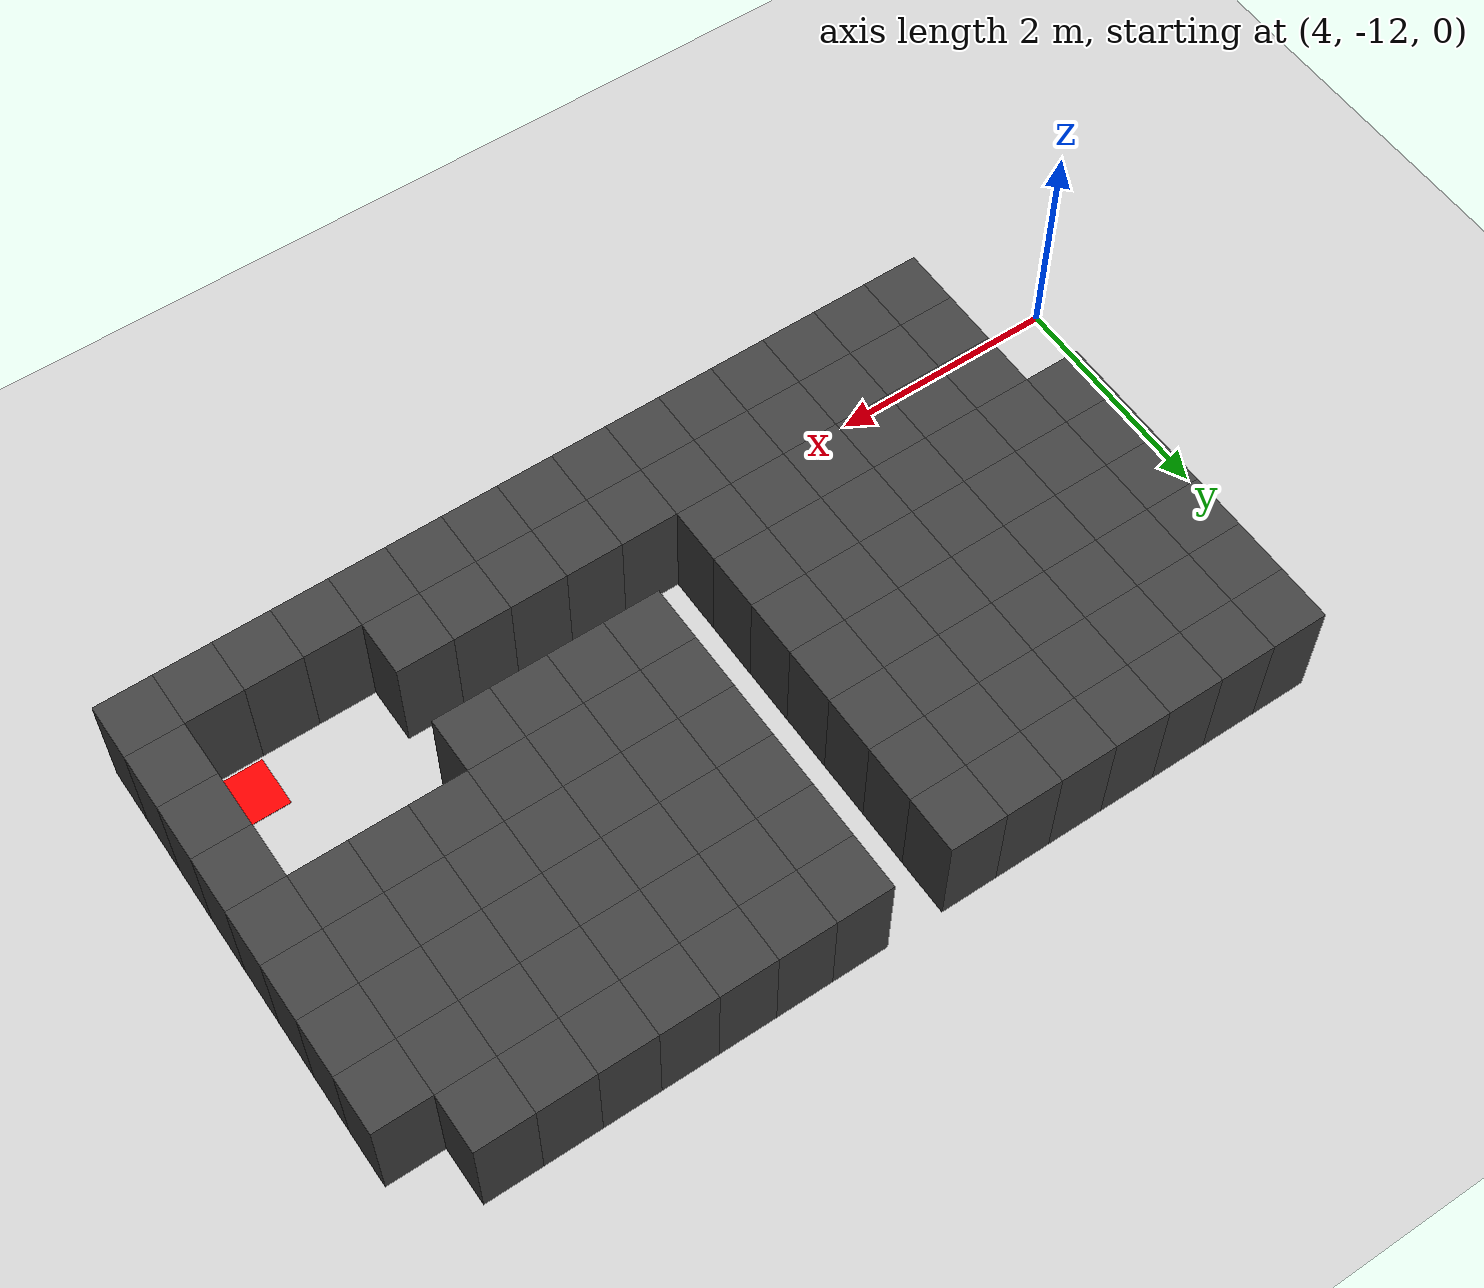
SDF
<sdf version="1.7">
 <world name="map_14706">
  <model name="ground_plane">
   <static>true</static>
   <link name="link">
    <collision name="collision">
     <geometry><plane><normal>0 0 1</normal><size>200 200</size></plane></geometry>
    </collision>
    <visual name="visual">
     <geometry><plane><normal>0 0 1</normal><size>200 200</size></plane></geometry>
     <material><ambient>0.8 0.8 0.8 1</ambient><diffuse>0.8 0.8 0.8 1</diffuse></material>
    </visual>
   </link>
  </model>
  <model name="maze_environment">
   <static>true</static>
   <link name="wall_1494">
    <pose>4.750 -8.250 0.500 0 0 0</pose>
    <collision name="col"><geometry><box><size>0.5 0.5 1.0</size></box></geometry></collision>
    <visual name="vis">
     <geometry><box><size>0.5 0.5 1.0</size></box></geometry>
     <material><ambient>0.15 0.15 0.15 1</ambient><diffuse>0.25 0.25 0.25 1</diffuse></material>
    </visual>
   </link>
   <link name="wall_1495">
    <pose>5.250 -8.250 0.500 0 0 0</pose>
    <collision name="col"><geometry><box><size>0.5 0.5 1.0</size></box></geometry></collision>
    <visual name="vis">
     <geometry><box><size>0.5 0.5 1.0</size></box></geometry>
     <material><ambient>0.15 0.15 0.15 1</ambient><diffuse>0.25 0.25 0.25 1</diffuse></material>
    </visual>
   </link>
   <link name="wall_1496">
    <pose>5.750 -8.250 0.500 0 0 0</pose>
    <collision name="col"><geometry><box><size>0.5 0.5 1.0</size></box></geometry></collision>
    <visual name="vis">
     <geometry><box><size>0.5 0.5 1.0</size></box></geometry>
     <material><ambient>0.15 0.15 0.15 1</ambient><diffuse>0.25 0.25 0.25 1</diffuse></material>
    </visual>
   </link>
   <link name="wall_1497">
    <pose>6.250 -8.250 0.500 0 0 0</pose>
    <collision name="col"><geometry><box><size>0.5 0.5 1.0</size></box></geometry></collision>
    <visual name="vis">
     <geometry><box><size>0.5 0.5 1.0</size></box></geometry>
     <material><ambient>0.15 0.15 0.15 1</ambient><diffuse>0.25 0.25 0.25 1</diffuse></material>
    </visual>
   </link>
   <link name="wall_1498">
    <pose>6.750 -8.250 0.500 0 0 0</pose>
    <collision name="col"><geometry><box><size>0.5 0.5 1.0</size></box></geometry></collision>
    <visual name="vis">
     <geometry><box><size>0.5 0.5 1.0</size></box></geometry>
     <material><ambient>0.15 0.15 0.15 1</ambient><diffuse>0.25 0.25 0.25 1</diffuse></material>
    </visual>
   </link>
   <link name="wall_1499">
    <pose>7.250 -8.250 0.500 0 0 0</pose>
    <collision name="col"><geometry><box><size>0.5 0.5 1.0</size></box></geometry></collision>
    <visual name="vis">
     <geometry><box><size>0.5 0.5 1.0</size></box></geometry>
     <material><ambient>0.15 0.15 0.15 1</ambient><diffuse>0.25 0.25 0.25 1</diffuse></material>
    </visual>
   </link>
   <link name="wall_1500">
    <pose>7.750 -8.250 0.500 0 0 0</pose>
    <collision name="col"><geometry><box><size>0.5 0.5 1.0</size></box></geometry></collision>
    <visual name="vis">
     <geometry><box><size>0.5 0.5 1.0</size></box></geometry>
     <material><ambient>0.15 0.15 0.15 1</ambient><diffuse>0.25 0.25 0.25 1</diffuse></material>
    </visual>
   </link>
   <link name="wall_1501">
    <pose>8.750 -8.250 0.500 0 0 0</pose>
    <collision name="col"><geometry><box><size>0.5 0.5 1.0</size></box></geometry></collision>
    <visual name="vis">
     <geometry><box><size>0.5 0.5 1.0</size></box></geometry>
     <material><ambient>0.15 0.15 0.15 1</ambient><diffuse>0.25 0.25 0.25 1</diffuse></material>
    </visual>
   </link>
   <link name="wall_1502">
    <pose>9.250 -8.250 0.500 0 0 0</pose>
    <collision name="col"><geometry><box><size>0.5 0.5 1.0</size></box></geometry></collision>
    <visual name="vis">
     <geometry><box><size>0.5 0.5 1.0</size></box></geometry>
     <material><ambient>0.15 0.15 0.15 1</ambient><diffuse>0.25 0.25 0.25 1</diffuse></material>
    </visual>
   </link>
   <link name="wall_1503">
    <pose>9.750 -8.250 0.500 0 0 0</pose>
    <collision name="col"><geometry><box><size>0.5 0.5 1.0</size></box></geometry></collision>
    <visual name="vis">
     <geometry><box><size>0.5 0.5 1.0</size></box></geometry>
     <material><ambient>0.15 0.15 0.15 1</ambient><diffuse>0.25 0.25 0.25 1</diffuse></material>
    </visual>
   </link>
   <link name="wall_1504">
    <pose>10.250 -8.250 0.500 0 0 0</pose>
    <collision name="col"><geometry><box><size>0.5 0.5 1.0</size></box></geometry></collision>
    <visual name="vis">
     <geometry><box><size>0.5 0.5 1.0</size></box></geometry>
     <material><ambient>0.15 0.15 0.15 1</ambient><diffuse>0.25 0.25 0.25 1</diffuse></material>
    </visual>
   </link>
   <link name="wall_1505">
    <pose>10.750 -8.250 0.500 0 0 0</pose>
    <collision name="col"><geometry><box><size>0.5 0.5 1.0</size></box></geometry></collision>
    <visual name="vis">
     <geometry><box><size>0.5 0.5 1.0</size></box></geometry>
     <material><ambient>0.15 0.15 0.15 1</ambient><diffuse>0.25 0.25 0.25 1</diffuse></material>
    </visual>
   </link>
   <link name="wall_1506">
    <pose>11.250 -8.250 0.500 0 0 0</pose>
    <collision name="col"><geometry><box><size>0.5 0.5 1.0</size></box></geometry></collision>
    <visual name="vis">
     <geometry><box><size>0.5 0.5 1.0</size></box></geometry>
     <material><ambient>0.15 0.15 0.15 1</ambient><diffuse>0.25 0.25 0.25 1</diffuse></material>
    </visual>
   </link>
   <link name="wall_1507">
    <pose>11.750 -8.250 0.500 0 0 0</pose>
    <collision name="col"><geometry><box><size>0.5 0.5 1.0</size></box></geometry></collision>
    <visual name="vis">
     <geometry><box><size>0.5 0.5 1.0</size></box></geometry>
     <material><ambient>0.15 0.15 0.15 1</ambient><diffuse>0.25 0.25 0.25 1</diffuse></material>
    </visual>
   </link>
   <link name="wall_1529">
    <pose>4.750 -8.750 0.500 0 0 0</pose>
    <collision name="col"><geometry><box><size>0.5 0.5 1.0</size></box></geometry></collision>
    <visual name="vis">
     <geometry><box><size>0.5 0.5 1.0</size></box></geometry>
     <material><ambient>0.15 0.15 0.15 1</ambient><diffuse>0.25 0.25 0.25 1</diffuse></material>
    </visual>
   </link>
   <link name="wall_1530">
    <pose>5.250 -8.750 0.500 0 0 0</pose>
    <collision name="col"><geometry><box><size>0.5 0.5 1.0</size></box></geometry></collision>
    <visual name="vis">
     <geometry><box><size>0.5 0.5 1.0</size></box></geometry>
     <material><ambient>0.15 0.15 0.15 1</ambient><diffuse>0.25 0.25 0.25 1</diffuse></material>
    </visual>
   </link>
   <link name="wall_1531">
    <pose>5.750 -8.750 0.500 0 0 0</pose>
    <collision name="col"><geometry><box><size>0.5 0.5 1.0</size></box></geometry></collision>
    <visual name="vis">
     <geometry><box><size>0.5 0.5 1.0</size></box></geometry>
     <material><ambient>0.15 0.15 0.15 1</ambient><diffuse>0.25 0.25 0.25 1</diffuse></material>
    </visual>
   </link>
   <link name="wall_1532">
    <pose>6.250 -8.750 0.500 0 0 0</pose>
    <collision name="col"><geometry><box><size>0.5 0.5 1.0</size></box></geometry></collision>
    <visual name="vis">
     <geometry><box><size>0.5 0.5 1.0</size></box></geometry>
     <material><ambient>0.15 0.15 0.15 1</ambient><diffuse>0.25 0.25 0.25 1</diffuse></material>
    </visual>
   </link>
   <link name="wall_1533">
    <pose>6.750 -8.750 0.500 0 0 0</pose>
    <collision name="col"><geometry><box><size>0.5 0.5 1.0</size></box></geometry></collision>
    <visual name="vis">
     <geometry><box><size>0.5 0.5 1.0</size></box></geometry>
     <material><ambient>0.15 0.15 0.15 1</ambient><diffuse>0.25 0.25 0.25 1</diffuse></material>
    </visual>
   </link>
   <link name="wall_1534">
    <pose>7.250 -8.750 0.500 0 0 0</pose>
    <collision name="col"><geometry><box><size>0.5 0.5 1.0</size></box></geometry></collision>
    <visual name="vis">
     <geometry><box><size>0.5 0.5 1.0</size></box></geometry>
     <material><ambient>0.15 0.15 0.15 1</ambient><diffuse>0.25 0.25 0.25 1</diffuse></material>
    </visual>
   </link>
   <link name="wall_1535">
    <pose>7.750 -8.750 0.500 0 0 0</pose>
    <collision name="col"><geometry><box><size>0.5 0.5 1.0</size></box></geometry></collision>
    <visual name="vis">
     <geometry><box><size>0.5 0.5 1.0</size></box></geometry>
     <material><ambient>0.15 0.15 0.15 1</ambient><diffuse>0.25 0.25 0.25 1</diffuse></material>
    </visual>
   </link>
   <link name="wall_1536">
    <pose>8.750 -8.750 0.500 0 0 0</pose>
    <collision name="col"><geometry><box><size>0.5 0.5 1.0</size></box></geometry></collision>
    <visual name="vis">
     <geometry><box><size>0.5 0.5 1.0</size></box></geometry>
     <material><ambient>0.15 0.15 0.15 1</ambient><diffuse>0.25 0.25 0.25 1</diffuse></material>
    </visual>
   </link>
   <link name="wall_1537">
    <pose>9.250 -8.750 0.500 0 0 0</pose>
    <collision name="col"><geometry><box><size>0.5 0.5 1.0</size></box></geometry></collision>
    <visual name="vis">
     <geometry><box><size>0.5 0.5 1.0</size></box></geometry>
     <material><ambient>0.15 0.15 0.15 1</ambient><diffuse>0.25 0.25 0.25 1</diffuse></material>
    </visual>
   </link>
   <link name="wall_1538">
    <pose>9.750 -8.750 0.500 0 0 0</pose>
    <collision name="col"><geometry><box><size>0.5 0.5 1.0</size></box></geometry></collision>
    <visual name="vis">
     <geometry><box><size>0.5 0.5 1.0</size></box></geometry>
     <material><ambient>0.15 0.15 0.15 1</ambient><diffuse>0.25 0.25 0.25 1</diffuse></material>
    </visual>
   </link>
   <link name="wall_1539">
    <pose>10.250 -8.750 0.500 0 0 0</pose>
    <collision name="col"><geometry><box><size>0.5 0.5 1.0</size></box></geometry></collision>
    <visual name="vis">
     <geometry><box><size>0.5 0.5 1.0</size></box></geometry>
     <material><ambient>0.15 0.15 0.15 1</ambient><diffuse>0.25 0.25 0.25 1</diffuse></material>
    </visual>
   </link>
   <link name="wall_1540">
    <pose>10.750 -8.750 0.500 0 0 0</pose>
    <collision name="col"><geometry><box><size>0.5 0.5 1.0</size></box></geometry></collision>
    <visual name="vis">
     <geometry><box><size>0.5 0.5 1.0</size></box></geometry>
     <material><ambient>0.15 0.15 0.15 1</ambient><diffuse>0.25 0.25 0.25 1</diffuse></material>
    </visual>
   </link>
   <link name="wall_1541">
    <pose>11.250 -8.750 0.500 0 0 0</pose>
    <collision name="col"><geometry><box><size>0.5 0.5 1.0</size></box></geometry></collision>
    <visual name="vis">
     <geometry><box><size>0.5 0.5 1.0</size></box></geometry>
     <material><ambient>0.15 0.15 0.15 1</ambient><diffuse>0.25 0.25 0.25 1</diffuse></material>
    </visual>
   </link>
   <link name="wall_1542">
    <pose>11.750 -8.750 0.500 0 0 0</pose>
    <collision name="col"><geometry><box><size>0.5 0.5 1.0</size></box></geometry></collision>
    <visual name="vis">
     <geometry><box><size>0.5 0.5 1.0</size></box></geometry>
     <material><ambient>0.15 0.15 0.15 1</ambient><diffuse>0.25 0.25 0.25 1</diffuse></material>
    </visual>
   </link>
   <link name="wall_1543">
    <pose>12.250 -8.750 0.500 0 0 0</pose>
    <collision name="col"><geometry><box><size>0.5 0.5 1.0</size></box></geometry></collision>
    <visual name="vis">
     <geometry><box><size>0.5 0.5 1.0</size></box></geometry>
     <material><ambient>0.15 0.15 0.15 1</ambient><diffuse>0.25 0.25 0.25 1</diffuse></material>
    </visual>
   </link>
   <link name="wall_1564">
    <pose>4.750 -9.250 0.500 0 0 0</pose>
    <collision name="col"><geometry><box><size>0.5 0.5 1.0</size></box></geometry></collision>
    <visual name="vis">
     <geometry><box><size>0.5 0.5 1.0</size></box></geometry>
     <material><ambient>0.15 0.15 0.15 1</ambient><diffuse>0.25 0.25 0.25 1</diffuse></material>
    </visual>
   </link>
   <link name="wall_1565">
    <pose>5.250 -9.250 0.500 0 0 0</pose>
    <collision name="col"><geometry><box><size>0.5 0.5 1.0</size></box></geometry></collision>
    <visual name="vis">
     <geometry><box><size>0.5 0.5 1.0</size></box></geometry>
     <material><ambient>0.15 0.15 0.15 1</ambient><diffuse>0.25 0.25 0.25 1</diffuse></material>
    </visual>
   </link>
   <link name="wall_1566">
    <pose>5.750 -9.250 0.500 0 0 0</pose>
    <collision name="col"><geometry><box><size>0.5 0.5 1.0</size></box></geometry></collision>
    <visual name="vis">
     <geometry><box><size>0.5 0.5 1.0</size></box></geometry>
     <material><ambient>0.15 0.15 0.15 1</ambient><diffuse>0.25 0.25 0.25 1</diffuse></material>
    </visual>
   </link>
   <link name="wall_1567">
    <pose>6.250 -9.250 0.500 0 0 0</pose>
    <collision name="col"><geometry><box><size>0.5 0.5 1.0</size></box></geometry></collision>
    <visual name="vis">
     <geometry><box><size>0.5 0.5 1.0</size></box></geometry>
     <material><ambient>0.15 0.15 0.15 1</ambient><diffuse>0.25 0.25 0.25 1</diffuse></material>
    </visual>
   </link>
   <link name="wall_1568">
    <pose>6.750 -9.250 0.500 0 0 0</pose>
    <collision name="col"><geometry><box><size>0.5 0.5 1.0</size></box></geometry></collision>
    <visual name="vis">
     <geometry><box><size>0.5 0.5 1.0</size></box></geometry>
     <material><ambient>0.15 0.15 0.15 1</ambient><diffuse>0.25 0.25 0.25 1</diffuse></material>
    </visual>
   </link>
   <link name="wall_1569">
    <pose>7.250 -9.250 0.500 0 0 0</pose>
    <collision name="col"><geometry><box><size>0.5 0.5 1.0</size></box></geometry></collision>
    <visual name="vis">
     <geometry><box><size>0.5 0.5 1.0</size></box></geometry>
     <material><ambient>0.15 0.15 0.15 1</ambient><diffuse>0.25 0.25 0.25 1</diffuse></material>
    </visual>
   </link>
   <link name="wall_1570">
    <pose>7.750 -9.250 0.500 0 0 0</pose>
    <collision name="col"><geometry><box><size>0.5 0.5 1.0</size></box></geometry></collision>
    <visual name="vis">
     <geometry><box><size>0.5 0.5 1.0</size></box></geometry>
     <material><ambient>0.15 0.15 0.15 1</ambient><diffuse>0.25 0.25 0.25 1</diffuse></material>
    </visual>
   </link>
   <link name="wall_1571">
    <pose>8.750 -9.250 0.500 0 0 0</pose>
    <collision name="col"><geometry><box><size>0.5 0.5 1.0</size></box></geometry></collision>
    <visual name="vis">
     <geometry><box><size>0.5 0.5 1.0</size></box></geometry>
     <material><ambient>0.15 0.15 0.15 1</ambient><diffuse>0.25 0.25 0.25 1</diffuse></material>
    </visual>
   </link>
   <link name="wall_1572">
    <pose>9.250 -9.250 0.500 0 0 0</pose>
    <collision name="col"><geometry><box><size>0.5 0.5 1.0</size></box></geometry></collision>
    <visual name="vis">
     <geometry><box><size>0.5 0.5 1.0</size></box></geometry>
     <material><ambient>0.15 0.15 0.15 1</ambient><diffuse>0.25 0.25 0.25 1</diffuse></material>
    </visual>
   </link>
   <link name="wall_1573">
    <pose>9.750 -9.250 0.500 0 0 0</pose>
    <collision name="col"><geometry><box><size>0.5 0.5 1.0</size></box></geometry></collision>
    <visual name="vis">
     <geometry><box><size>0.5 0.5 1.0</size></box></geometry>
     <material><ambient>0.15 0.15 0.15 1</ambient><diffuse>0.25 0.25 0.25 1</diffuse></material>
    </visual>
   </link>
   <link name="wall_1574">
    <pose>10.250 -9.250 0.500 0 0 0</pose>
    <collision name="col"><geometry><box><size>0.5 0.5 1.0</size></box></geometry></collision>
    <visual name="vis">
     <geometry><box><size>0.5 0.5 1.0</size></box></geometry>
     <material><ambient>0.15 0.15 0.15 1</ambient><diffuse>0.25 0.25 0.25 1</diffuse></material>
    </visual>
   </link>
   <link name="wall_1575">
    <pose>10.750 -9.250 0.500 0 0 0</pose>
    <collision name="col"><geometry><box><size>0.5 0.5 1.0</size></box></geometry></collision>
    <visual name="vis">
     <geometry><box><size>0.5 0.5 1.0</size></box></geometry>
     <material><ambient>0.15 0.15 0.15 1</ambient><diffuse>0.25 0.25 0.25 1</diffuse></material>
    </visual>
   </link>
   <link name="wall_1576">
    <pose>11.250 -9.250 0.500 0 0 0</pose>
    <collision name="col"><geometry><box><size>0.5 0.5 1.0</size></box></geometry></collision>
    <visual name="vis">
     <geometry><box><size>0.5 0.5 1.0</size></box></geometry>
     <material><ambient>0.15 0.15 0.15 1</ambient><diffuse>0.25 0.25 0.25 1</diffuse></material>
    </visual>
   </link>
   <link name="wall_1577">
    <pose>11.750 -9.250 0.500 0 0 0</pose>
    <collision name="col"><geometry><box><size>0.5 0.5 1.0</size></box></geometry></collision>
    <visual name="vis">
     <geometry><box><size>0.5 0.5 1.0</size></box></geometry>
     <material><ambient>0.15 0.15 0.15 1</ambient><diffuse>0.25 0.25 0.25 1</diffuse></material>
    </visual>
   </link>
   <link name="wall_1578">
    <pose>12.250 -9.250 0.500 0 0 0</pose>
    <collision name="col"><geometry><box><size>0.5 0.5 1.0</size></box></geometry></collision>
    <visual name="vis">
     <geometry><box><size>0.5 0.5 1.0</size></box></geometry>
     <material><ambient>0.15 0.15 0.15 1</ambient><diffuse>0.25 0.25 0.25 1</diffuse></material>
    </visual>
   </link>
   <link name="wall_1597">
    <pose>4.750 -9.750 0.500 0 0 0</pose>
    <collision name="col"><geometry><box><size>0.5 0.5 1.0</size></box></geometry></collision>
    <visual name="vis">
     <geometry><box><size>0.5 0.5 1.0</size></box></geometry>
     <material><ambient>0.15 0.15 0.15 1</ambient><diffuse>0.25 0.25 0.25 1</diffuse></material>
    </visual>
   </link>
   <link name="wall_1598">
    <pose>5.250 -9.750 0.500 0 0 0</pose>
    <collision name="col"><geometry><box><size>0.5 0.5 1.0</size></box></geometry></collision>
    <visual name="vis">
     <geometry><box><size>0.5 0.5 1.0</size></box></geometry>
     <material><ambient>0.15 0.15 0.15 1</ambient><diffuse>0.25 0.25 0.25 1</diffuse></material>
    </visual>
   </link>
   <link name="wall_1599">
    <pose>5.750 -9.750 0.500 0 0 0</pose>
    <collision name="col"><geometry><box><size>0.5 0.5 1.0</size></box></geometry></collision>
    <visual name="vis">
     <geometry><box><size>0.5 0.5 1.0</size></box></geometry>
     <material><ambient>0.15 0.15 0.15 1</ambient><diffuse>0.25 0.25 0.25 1</diffuse></material>
    </visual>
   </link>
   <link name="wall_1600">
    <pose>6.250 -9.750 0.500 0 0 0</pose>
    <collision name="col"><geometry><box><size>0.5 0.5 1.0</size></box></geometry></collision>
    <visual name="vis">
     <geometry><box><size>0.5 0.5 1.0</size></box></geometry>
     <material><ambient>0.15 0.15 0.15 1</ambient><diffuse>0.25 0.25 0.25 1</diffuse></material>
    </visual>
   </link>
   <link name="wall_1601">
    <pose>6.750 -9.750 0.500 0 0 0</pose>
    <collision name="col"><geometry><box><size>0.5 0.5 1.0</size></box></geometry></collision>
    <visual name="vis">
     <geometry><box><size>0.5 0.5 1.0</size></box></geometry>
     <material><ambient>0.15 0.15 0.15 1</ambient><diffuse>0.25 0.25 0.25 1</diffuse></material>
    </visual>
   </link>
   <link name="wall_1602">
    <pose>7.250 -9.750 0.500 0 0 0</pose>
    <collision name="col"><geometry><box><size>0.5 0.5 1.0</size></box></geometry></collision>
    <visual name="vis">
     <geometry><box><size>0.5 0.5 1.0</size></box></geometry>
     <material><ambient>0.15 0.15 0.15 1</ambient><diffuse>0.25 0.25 0.25 1</diffuse></material>
    </visual>
   </link>
   <link name="wall_1603">
    <pose>7.750 -9.750 0.500 0 0 0</pose>
    <collision name="col"><geometry><box><size>0.5 0.5 1.0</size></box></geometry></collision>
    <visual name="vis">
     <geometry><box><size>0.5 0.5 1.0</size></box></geometry>
     <material><ambient>0.15 0.15 0.15 1</ambient><diffuse>0.25 0.25 0.25 1</diffuse></material>
    </visual>
   </link>
   <link name="wall_1604">
    <pose>8.750 -9.750 0.500 0 0 0</pose>
    <collision name="col"><geometry><box><size>0.5 0.5 1.0</size></box></geometry></collision>
    <visual name="vis">
     <geometry><box><size>0.5 0.5 1.0</size></box></geometry>
     <material><ambient>0.15 0.15 0.15 1</ambient><diffuse>0.25 0.25 0.25 1</diffuse></material>
    </visual>
   </link>
   <link name="wall_1605">
    <pose>9.250 -9.750 0.500 0 0 0</pose>
    <collision name="col"><geometry><box><size>0.5 0.5 1.0</size></box></geometry></collision>
    <visual name="vis">
     <geometry><box><size>0.5 0.5 1.0</size></box></geometry>
     <material><ambient>0.15 0.15 0.15 1</ambient><diffuse>0.25 0.25 0.25 1</diffuse></material>
    </visual>
   </link>
   <link name="wall_1606">
    <pose>9.750 -9.750 0.500 0 0 0</pose>
    <collision name="col"><geometry><box><size>0.5 0.5 1.0</size></box></geometry></collision>
    <visual name="vis">
     <geometry><box><size>0.5 0.5 1.0</size></box></geometry>
     <material><ambient>0.15 0.15 0.15 1</ambient><diffuse>0.25 0.25 0.25 1</diffuse></material>
    </visual>
   </link>
   <link name="wall_1607">
    <pose>10.250 -9.750 0.500 0 0 0</pose>
    <collision name="col"><geometry><box><size>0.5 0.5 1.0</size></box></geometry></collision>
    <visual name="vis">
     <geometry><box><size>0.5 0.5 1.0</size></box></geometry>
     <material><ambient>0.15 0.15 0.15 1</ambient><diffuse>0.25 0.25 0.25 1</diffuse></material>
    </visual>
   </link>
   <link name="wall_1608">
    <pose>10.750 -9.750 0.500 0 0 0</pose>
    <collision name="col"><geometry><box><size>0.5 0.5 1.0</size></box></geometry></collision>
    <visual name="vis">
     <geometry><box><size>0.5 0.5 1.0</size></box></geometry>
     <material><ambient>0.15 0.15 0.15 1</ambient><diffuse>0.25 0.25 0.25 1</diffuse></material>
    </visual>
   </link>
   <link name="wall_1609">
    <pose>11.250 -9.750 0.500 0 0 0</pose>
    <collision name="col"><geometry><box><size>0.5 0.5 1.0</size></box></geometry></collision>
    <visual name="vis">
     <geometry><box><size>0.5 0.5 1.0</size></box></geometry>
     <material><ambient>0.15 0.15 0.15 1</ambient><diffuse>0.25 0.25 0.25 1</diffuse></material>
    </visual>
   </link>
   <link name="wall_1610">
    <pose>11.750 -9.750 0.500 0 0 0</pose>
    <collision name="col"><geometry><box><size>0.5 0.5 1.0</size></box></geometry></collision>
    <visual name="vis">
     <geometry><box><size>0.5 0.5 1.0</size></box></geometry>
     <material><ambient>0.15 0.15 0.15 1</ambient><diffuse>0.25 0.25 0.25 1</diffuse></material>
    </visual>
   </link>
   <link name="wall_1611">
    <pose>12.250 -9.750 0.500 0 0 0</pose>
    <collision name="col"><geometry><box><size>0.5 0.5 1.0</size></box></geometry></collision>
    <visual name="vis">
     <geometry><box><size>0.5 0.5 1.0</size></box></geometry>
     <material><ambient>0.15 0.15 0.15 1</ambient><diffuse>0.25 0.25 0.25 1</diffuse></material>
    </visual>
   </link>
   <link name="wall_1633">
    <pose>4.750 -10.250 0.500 0 0 0</pose>
    <collision name="col"><geometry><box><size>0.5 0.5 1.0</size></box></geometry></collision>
    <visual name="vis">
     <geometry><box><size>0.5 0.5 1.0</size></box></geometry>
     <material><ambient>0.15 0.15 0.15 1</ambient><diffuse>0.25 0.25 0.25 1</diffuse></material>
    </visual>
   </link>
   <link name="wall_1634">
    <pose>5.250 -10.250 0.500 0 0 0</pose>
    <collision name="col"><geometry><box><size>0.5 0.5 1.0</size></box></geometry></collision>
    <visual name="vis">
     <geometry><box><size>0.5 0.5 1.0</size></box></geometry>
     <material><ambient>0.15 0.15 0.15 1</ambient><diffuse>0.25 0.25 0.25 1</diffuse></material>
    </visual>
   </link>
   <link name="wall_1635">
    <pose>5.750 -10.250 0.500 0 0 0</pose>
    <collision name="col"><geometry><box><size>0.5 0.5 1.0</size></box></geometry></collision>
    <visual name="vis">
     <geometry><box><size>0.5 0.5 1.0</size></box></geometry>
     <material><ambient>0.15 0.15 0.15 1</ambient><diffuse>0.25 0.25 0.25 1</diffuse></material>
    </visual>
   </link>
   <link name="wall_1636">
    <pose>6.250 -10.250 0.500 0 0 0</pose>
    <collision name="col"><geometry><box><size>0.5 0.5 1.0</size></box></geometry></collision>
    <visual name="vis">
     <geometry><box><size>0.5 0.5 1.0</size></box></geometry>
     <material><ambient>0.15 0.15 0.15 1</ambient><diffuse>0.25 0.25 0.25 1</diffuse></material>
    </visual>
   </link>
   <link name="wall_1637">
    <pose>6.750 -10.250 0.500 0 0 0</pose>
    <collision name="col"><geometry><box><size>0.5 0.5 1.0</size></box></geometry></collision>
    <visual name="vis">
     <geometry><box><size>0.5 0.5 1.0</size></box></geometry>
     <material><ambient>0.15 0.15 0.15 1</ambient><diffuse>0.25 0.25 0.25 1</diffuse></material>
    </visual>
   </link>
   <link name="wall_1638">
    <pose>7.250 -10.250 0.500 0 0 0</pose>
    <collision name="col"><geometry><box><size>0.5 0.5 1.0</size></box></geometry></collision>
    <visual name="vis">
     <geometry><box><size>0.5 0.5 1.0</size></box></geometry>
     <material><ambient>0.15 0.15 0.15 1</ambient><diffuse>0.25 0.25 0.25 1</diffuse></material>
    </visual>
   </link>
   <link name="wall_1639">
    <pose>7.750 -10.250 0.500 0 0 0</pose>
    <collision name="col"><geometry><box><size>0.5 0.5 1.0</size></box></geometry></collision>
    <visual name="vis">
     <geometry><box><size>0.5 0.5 1.0</size></box></geometry>
     <material><ambient>0.15 0.15 0.15 1</ambient><diffuse>0.25 0.25 0.25 1</diffuse></material>
    </visual>
   </link>
   <link name="wall_1640">
    <pose>8.750 -10.250 0.500 0 0 0</pose>
    <collision name="col"><geometry><box><size>0.5 0.5 1.0</size></box></geometry></collision>
    <visual name="vis">
     <geometry><box><size>0.5 0.5 1.0</size></box></geometry>
     <material><ambient>0.15 0.15 0.15 1</ambient><diffuse>0.25 0.25 0.25 1</diffuse></material>
    </visual>
   </link>
   <link name="wall_1641">
    <pose>9.250 -10.250 0.500 0 0 0</pose>
    <collision name="col"><geometry><box><size>0.5 0.5 1.0</size></box></geometry></collision>
    <visual name="vis">
     <geometry><box><size>0.5 0.5 1.0</size></box></geometry>
     <material><ambient>0.15 0.15 0.15 1</ambient><diffuse>0.25 0.25 0.25 1</diffuse></material>
    </visual>
   </link>
   <link name="wall_1642">
    <pose>9.750 -10.250 0.500 0 0 0</pose>
    <collision name="col"><geometry><box><size>0.5 0.5 1.0</size></box></geometry></collision>
    <visual name="vis">
     <geometry><box><size>0.5 0.5 1.0</size></box></geometry>
     <material><ambient>0.15 0.15 0.15 1</ambient><diffuse>0.25 0.25 0.25 1</diffuse></material>
    </visual>
   </link>
   <link name="wall_1643">
    <pose>10.250 -10.250 0.500 0 0 0</pose>
    <collision name="col"><geometry><box><size>0.5 0.5 1.0</size></box></geometry></collision>
    <visual name="vis">
     <geometry><box><size>0.5 0.5 1.0</size></box></geometry>
     <material><ambient>0.15 0.15 0.15 1</ambient><diffuse>0.25 0.25 0.25 1</diffuse></material>
    </visual>
   </link>
   <link name="wall_1644">
    <pose>10.750 -10.250 0.500 0 0 0</pose>
    <collision name="col"><geometry><box><size>0.5 0.5 1.0</size></box></geometry></collision>
    <visual name="vis">
     <geometry><box><size>0.5 0.5 1.0</size></box></geometry>
     <material><ambient>0.15 0.15 0.15 1</ambient><diffuse>0.25 0.25 0.25 1</diffuse></material>
    </visual>
   </link>
   <link name="wall_1645">
    <pose>11.250 -10.250 0.500 0 0 0</pose>
    <collision name="col"><geometry><box><size>0.5 0.5 1.0</size></box></geometry></collision>
    <visual name="vis">
     <geometry><box><size>0.5 0.5 1.0</size></box></geometry>
     <material><ambient>0.15 0.15 0.15 1</ambient><diffuse>0.25 0.25 0.25 1</diffuse></material>
    </visual>
   </link>
   <link name="wall_1646">
    <pose>11.750 -10.250 0.500 0 0 0</pose>
    <collision name="col"><geometry><box><size>0.5 0.5 1.0</size></box></geometry></collision>
    <visual name="vis">
     <geometry><box><size>0.5 0.5 1.0</size></box></geometry>
     <material><ambient>0.15 0.15 0.15 1</ambient><diffuse>0.25 0.25 0.25 1</diffuse></material>
    </visual>
   </link>
   <link name="wall_1647">
    <pose>12.250 -10.250 0.500 0 0 0</pose>
    <collision name="col"><geometry><box><size>0.5 0.5 1.0</size></box></geometry></collision>
    <visual name="vis">
     <geometry><box><size>0.5 0.5 1.0</size></box></geometry>
     <material><ambient>0.15 0.15 0.15 1</ambient><diffuse>0.25 0.25 0.25 1</diffuse></material>
    </visual>
   </link>
   <link name="wall_1669">
    <pose>4.750 -10.750 0.500 0 0 0</pose>
    <collision name="col"><geometry><box><size>0.5 0.5 1.0</size></box></geometry></collision>
    <visual name="vis">
     <geometry><box><size>0.5 0.5 1.0</size></box></geometry>
     <material><ambient>0.15 0.15 0.15 1</ambient><diffuse>0.25 0.25 0.25 1</diffuse></material>
    </visual>
   </link>
   <link name="wall_1670">
    <pose>5.250 -10.750 0.500 0 0 0</pose>
    <collision name="col"><geometry><box><size>0.5 0.5 1.0</size></box></geometry></collision>
    <visual name="vis">
     <geometry><box><size>0.5 0.5 1.0</size></box></geometry>
     <material><ambient>0.15 0.15 0.15 1</ambient><diffuse>0.25 0.25 0.25 1</diffuse></material>
    </visual>
   </link>
   <link name="wall_1671">
    <pose>5.750 -10.750 0.500 0 0 0</pose>
    <collision name="col"><geometry><box><size>0.5 0.5 1.0</size></box></geometry></collision>
    <visual name="vis">
     <geometry><box><size>0.5 0.5 1.0</size></box></geometry>
     <material><ambient>0.15 0.15 0.15 1</ambient><diffuse>0.25 0.25 0.25 1</diffuse></material>
    </visual>
   </link>
   <link name="wall_1672">
    <pose>6.250 -10.750 0.500 0 0 0</pose>
    <collision name="col"><geometry><box><size>0.5 0.5 1.0</size></box></geometry></collision>
    <visual name="vis">
     <geometry><box><size>0.5 0.5 1.0</size></box></geometry>
     <material><ambient>0.15 0.15 0.15 1</ambient><diffuse>0.25 0.25 0.25 1</diffuse></material>
    </visual>
   </link>
   <link name="wall_1673">
    <pose>6.750 -10.750 0.500 0 0 0</pose>
    <collision name="col"><geometry><box><size>0.5 0.5 1.0</size></box></geometry></collision>
    <visual name="vis">
     <geometry><box><size>0.5 0.5 1.0</size></box></geometry>
     <material><ambient>0.15 0.15 0.15 1</ambient><diffuse>0.25 0.25 0.25 1</diffuse></material>
    </visual>
   </link>
   <link name="wall_1674">
    <pose>7.250 -10.750 0.500 0 0 0</pose>
    <collision name="col"><geometry><box><size>0.5 0.5 1.0</size></box></geometry></collision>
    <visual name="vis">
     <geometry><box><size>0.5 0.5 1.0</size></box></geometry>
     <material><ambient>0.15 0.15 0.15 1</ambient><diffuse>0.25 0.25 0.25 1</diffuse></material>
    </visual>
   </link>
   <link name="wall_1675">
    <pose>7.750 -10.750 0.500 0 0 0</pose>
    <collision name="col"><geometry><box><size>0.5 0.5 1.0</size></box></geometry></collision>
    <visual name="vis">
     <geometry><box><size>0.5 0.5 1.0</size></box></geometry>
     <material><ambient>0.15 0.15 0.15 1</ambient><diffuse>0.25 0.25 0.25 1</diffuse></material>
    </visual>
   </link>
   <link name="wall_1676">
    <pose>8.750 -10.750 0.500 0 0 0</pose>
    <collision name="col"><geometry><box><size>0.5 0.5 1.0</size></box></geometry></collision>
    <visual name="vis">
     <geometry><box><size>0.5 0.5 1.0</size></box></geometry>
     <material><ambient>0.15 0.15 0.15 1</ambient><diffuse>0.25 0.25 0.25 1</diffuse></material>
    </visual>
   </link>
   <link name="wall_1677">
    <pose>9.250 -10.750 0.500 0 0 0</pose>
    <collision name="col"><geometry><box><size>0.5 0.5 1.0</size></box></geometry></collision>
    <visual name="vis">
     <geometry><box><size>0.5 0.5 1.0</size></box></geometry>
     <material><ambient>0.15 0.15 0.15 1</ambient><diffuse>0.25 0.25 0.25 1</diffuse></material>
    </visual>
   </link>
   <link name="wall_1678">
    <pose>9.750 -10.750 0.500 0 0 0</pose>
    <collision name="col"><geometry><box><size>0.5 0.5 1.0</size></box></geometry></collision>
    <visual name="vis">
     <geometry><box><size>0.5 0.5 1.0</size></box></geometry>
     <material><ambient>0.15 0.15 0.15 1</ambient><diffuse>0.25 0.25 0.25 1</diffuse></material>
    </visual>
   </link>
   <link name="wall_1679">
    <pose>10.250 -10.750 0.500 0 0 0</pose>
    <collision name="col"><geometry><box><size>0.5 0.5 1.0</size></box></geometry></collision>
    <visual name="vis">
     <geometry><box><size>0.5 0.5 1.0</size></box></geometry>
     <material><ambient>0.15 0.15 0.15 1</ambient><diffuse>0.25 0.25 0.25 1</diffuse></material>
    </visual>
   </link>
   <link name="wall_1680">
    <pose>12.250 -10.750 0.500 0 0 0</pose>
    <collision name="col"><geometry><box><size>0.5 0.5 1.0</size></box></geometry></collision>
    <visual name="vis">
     <geometry><box><size>0.5 0.5 1.0</size></box></geometry>
     <material><ambient>0.15 0.15 0.15 1</ambient><diffuse>0.25 0.25 0.25 1</diffuse></material>
    </visual>
   </link>
   <link name="wall_1710">
    <pose>5.250 -11.250 0.500 0 0 0</pose>
    <collision name="col"><geometry><box><size>0.5 0.5 1.0</size></box></geometry></collision>
    <visual name="vis">
     <geometry><box><size>0.5 0.5 1.0</size></box></geometry>
     <material><ambient>0.15 0.15 0.15 1</ambient><diffuse>0.25 0.25 0.25 1</diffuse></material>
    </visual>
   </link>
   <link name="wall_1711">
    <pose>5.750 -11.250 0.500 0 0 0</pose>
    <collision name="col"><geometry><box><size>0.5 0.5 1.0</size></box></geometry></collision>
    <visual name="vis">
     <geometry><box><size>0.5 0.5 1.0</size></box></geometry>
     <material><ambient>0.15 0.15 0.15 1</ambient><diffuse>0.25 0.25 0.25 1</diffuse></material>
    </visual>
   </link>
   <link name="wall_1712">
    <pose>6.250 -11.250 0.500 0 0 0</pose>
    <collision name="col"><geometry><box><size>0.5 0.5 1.0</size></box></geometry></collision>
    <visual name="vis">
     <geometry><box><size>0.5 0.5 1.0</size></box></geometry>
     <material><ambient>0.15 0.15 0.15 1</ambient><diffuse>0.25 0.25 0.25 1</diffuse></material>
    </visual>
   </link>
   <link name="wall_1713">
    <pose>6.750 -11.250 0.500 0 0 0</pose>
    <collision name="col"><geometry><box><size>0.5 0.5 1.0</size></box></geometry></collision>
    <visual name="vis">
     <geometry><box><size>0.5 0.5 1.0</size></box></geometry>
     <material><ambient>0.15 0.15 0.15 1</ambient><diffuse>0.25 0.25 0.25 1</diffuse></material>
    </visual>
   </link>
   <link name="wall_1714">
    <pose>7.250 -11.250 0.500 0 0 0</pose>
    <collision name="col"><geometry><box><size>0.5 0.5 1.0</size></box></geometry></collision>
    <visual name="vis">
     <geometry><box><size>0.5 0.5 1.0</size></box></geometry>
     <material><ambient>0.15 0.15 0.15 1</ambient><diffuse>0.25 0.25 0.25 1</diffuse></material>
    </visual>
   </link>
   <link name="wall_1715">
    <pose>7.750 -11.250 0.500 0 0 0</pose>
    <collision name="col"><geometry><box><size>0.5 0.5 1.0</size></box></geometry></collision>
    <visual name="vis">
     <geometry><box><size>0.5 0.5 1.0</size></box></geometry>
     <material><ambient>0.15 0.15 0.15 1</ambient><diffuse>0.25 0.25 0.25 1</diffuse></material>
    </visual>
   </link>
   <link name="wall_1716">
    <pose>12.250 -11.250 0.500 0 0 0</pose>
    <collision name="col"><geometry><box><size>0.5 0.5 1.0</size></box></geometry></collision>
    <visual name="vis">
     <geometry><box><size>0.5 0.5 1.0</size></box></geometry>
     <material><ambient>0.15 0.15 0.15 1</ambient><diffuse>0.25 0.25 0.25 1</diffuse></material>
    </visual>
   </link>
   <link name="wall_1752">
    <pose>5.250 -11.750 0.500 0 0 0</pose>
    <collision name="col"><geometry><box><size>0.5 0.5 1.0</size></box></geometry></collision>
    <visual name="vis">
     <geometry><box><size>0.5 0.5 1.0</size></box></geometry>
     <material><ambient>0.15 0.15 0.15 1</ambient><diffuse>0.25 0.25 0.25 1</diffuse></material>
    </visual>
   </link>
   <link name="wall_1753">
    <pose>5.750 -11.750 0.500 0 0 0</pose>
    <collision name="col"><geometry><box><size>0.5 0.5 1.0</size></box></geometry></collision>
    <visual name="vis">
     <geometry><box><size>0.5 0.5 1.0</size></box></geometry>
     <material><ambient>0.15 0.15 0.15 1</ambient><diffuse>0.25 0.25 0.25 1</diffuse></material>
    </visual>
   </link>
   <link name="wall_1754">
    <pose>6.250 -11.750 0.500 0 0 0</pose>
    <collision name="col"><geometry><box><size>0.5 0.5 1.0</size></box></geometry></collision>
    <visual name="vis">
     <geometry><box><size>0.5 0.5 1.0</size></box></geometry>
     <material><ambient>0.15 0.15 0.15 1</ambient><diffuse>0.25 0.25 0.25 1</diffuse></material>
    </visual>
   </link>
   <link name="wall_1755">
    <pose>6.750 -11.750 0.500 0 0 0</pose>
    <collision name="col"><geometry><box><size>0.5 0.5 1.0</size></box></geometry></collision>
    <visual name="vis">
     <geometry><box><size>0.5 0.5 1.0</size></box></geometry>
     <material><ambient>0.15 0.15 0.15 1</ambient><diffuse>0.25 0.25 0.25 1</diffuse></material>
    </visual>
   </link>
   <link name="wall_1756">
    <pose>7.250 -11.750 0.500 0 0 0</pose>
    <collision name="col"><geometry><box><size>0.5 0.5 1.0</size></box></geometry></collision>
    <visual name="vis">
     <geometry><box><size>0.5 0.5 1.0</size></box></geometry>
     <material><ambient>0.15 0.15 0.15 1</ambient><diffuse>0.25 0.25 0.25 1</diffuse></material>
    </visual>
   </link>
   <link name="wall_1757">
    <pose>7.750 -11.750 0.500 0 0 0</pose>
    <collision name="col"><geometry><box><size>0.5 0.5 1.0</size></box></geometry></collision>
    <visual name="vis">
     <geometry><box><size>0.5 0.5 1.0</size></box></geometry>
     <material><ambient>0.15 0.15 0.15 1</ambient><diffuse>0.25 0.25 0.25 1</diffuse></material>
    </visual>
   </link>
   <link name="wall_1758">
    <pose>8.250 -11.750 0.500 0 0 0</pose>
    <collision name="col"><geometry><box><size>0.5 0.5 1.0</size></box></geometry></collision>
    <visual name="vis">
     <geometry><box><size>0.5 0.5 1.0</size></box></geometry>
     <material><ambient>0.15 0.15 0.15 1</ambient><diffuse>0.25 0.25 0.25 1</diffuse></material>
    </visual>
   </link>
   <link name="wall_1759">
    <pose>8.750 -11.750 0.500 0 0 0</pose>
    <collision name="col"><geometry><box><size>0.5 0.5 1.0</size></box></geometry></collision>
    <visual name="vis">
     <geometry><box><size>0.5 0.5 1.0</size></box></geometry>
     <material><ambient>0.15 0.15 0.15 1</ambient><diffuse>0.25 0.25 0.25 1</diffuse></material>
    </visual>
   </link>
   <link name="wall_1760">
    <pose>9.250 -11.750 0.500 0 0 0</pose>
    <collision name="col"><geometry><box><size>0.5 0.5 1.0</size></box></geometry></collision>
    <visual name="vis">
     <geometry><box><size>0.5 0.5 1.0</size></box></geometry>
     <material><ambient>0.15 0.15 0.15 1</ambient><diffuse>0.25 0.25 0.25 1</diffuse></material>
    </visual>
   </link>
   <link name="wall_1761">
    <pose>9.750 -11.750 0.500 0 0 0</pose>
    <collision name="col"><geometry><box><size>0.5 0.5 1.0</size></box></geometry></collision>
    <visual name="vis">
     <geometry><box><size>0.5 0.5 1.0</size></box></geometry>
     <material><ambient>0.15 0.15 0.15 1</ambient><diffuse>0.25 0.25 0.25 1</diffuse></material>
    </visual>
   </link>
   <link name="wall_1762">
    <pose>10.250 -11.750 0.500 0 0 0</pose>
    <collision name="col"><geometry><box><size>0.5 0.5 1.0</size></box></geometry></collision>
    <visual name="vis">
     <geometry><box><size>0.5 0.5 1.0</size></box></geometry>
     <material><ambient>0.15 0.15 0.15 1</ambient><diffuse>0.25 0.25 0.25 1</diffuse></material>
    </visual>
   </link>
   <link name="wall_1763">
    <pose>12.250 -11.750 0.500 0 0 0</pose>
    <collision name="col"><geometry><box><size>0.5 0.5 1.0</size></box></geometry></collision>
    <visual name="vis">
     <geometry><box><size>0.5 0.5 1.0</size></box></geometry>
     <material><ambient>0.15 0.15 0.15 1</ambient><diffuse>0.25 0.25 0.25 1</diffuse></material>
    </visual>
   </link>
   <link name="wall_1799">
    <pose>5.250 -12.250 0.500 0 0 0</pose>
    <collision name="col"><geometry><box><size>0.5 0.5 1.0</size></box></geometry></collision>
    <visual name="vis">
     <geometry><box><size>0.5 0.5 1.0</size></box></geometry>
     <material><ambient>0.15 0.15 0.15 1</ambient><diffuse>0.25 0.25 0.25 1</diffuse></material>
    </visual>
   </link>
   <link name="wall_1800">
    <pose>5.750 -12.250 0.500 0 0 0</pose>
    <collision name="col"><geometry><box><size>0.5 0.5 1.0</size></box></geometry></collision>
    <visual name="vis">
     <geometry><box><size>0.5 0.5 1.0</size></box></geometry>
     <material><ambient>0.15 0.15 0.15 1</ambient><diffuse>0.25 0.25 0.25 1</diffuse></material>
    </visual>
   </link>
   <link name="wall_1801">
    <pose>6.250 -12.250 0.500 0 0 0</pose>
    <collision name="col"><geometry><box><size>0.5 0.5 1.0</size></box></geometry></collision>
    <visual name="vis">
     <geometry><box><size>0.5 0.5 1.0</size></box></geometry>
     <material><ambient>0.15 0.15 0.15 1</ambient><diffuse>0.25 0.25 0.25 1</diffuse></material>
    </visual>
   </link>
   <link name="wall_1802">
    <pose>6.750 -12.250 0.500 0 0 0</pose>
    <collision name="col"><geometry><box><size>0.5 0.5 1.0</size></box></geometry></collision>
    <visual name="vis">
     <geometry><box><size>0.5 0.5 1.0</size></box></geometry>
     <material><ambient>0.15 0.15 0.15 1</ambient><diffuse>0.25 0.25 0.25 1</diffuse></material>
    </visual>
   </link>
   <link name="wall_1803">
    <pose>7.250 -12.250 0.500 0 0 0</pose>
    <collision name="col"><geometry><box><size>0.5 0.5 1.0</size></box></geometry></collision>
    <visual name="vis">
     <geometry><box><size>0.5 0.5 1.0</size></box></geometry>
     <material><ambient>0.15 0.15 0.15 1</ambient><diffuse>0.25 0.25 0.25 1</diffuse></material>
    </visual>
   </link>
   <link name="wall_1804">
    <pose>7.750 -12.250 0.500 0 0 0</pose>
    <collision name="col"><geometry><box><size>0.5 0.5 1.0</size></box></geometry></collision>
    <visual name="vis">
     <geometry><box><size>0.5 0.5 1.0</size></box></geometry>
     <material><ambient>0.15 0.15 0.15 1</ambient><diffuse>0.25 0.25 0.25 1</diffuse></material>
    </visual>
   </link>
   <link name="wall_1805">
    <pose>8.250 -12.250 0.500 0 0 0</pose>
    <collision name="col"><geometry><box><size>0.5 0.5 1.0</size></box></geometry></collision>
    <visual name="vis">
     <geometry><box><size>0.5 0.5 1.0</size></box></geometry>
     <material><ambient>0.15 0.15 0.15 1</ambient><diffuse>0.25 0.25 0.25 1</diffuse></material>
    </visual>
   </link>
   <link name="wall_1806">
    <pose>8.750 -12.250 0.500 0 0 0</pose>
    <collision name="col"><geometry><box><size>0.5 0.5 1.0</size></box></geometry></collision>
    <visual name="vis">
     <geometry><box><size>0.5 0.5 1.0</size></box></geometry>
     <material><ambient>0.15 0.15 0.15 1</ambient><diffuse>0.25 0.25 0.25 1</diffuse></material>
    </visual>
   </link>
   <link name="wall_1807">
    <pose>9.250 -12.250 0.500 0 0 0</pose>
    <collision name="col"><geometry><box><size>0.5 0.5 1.0</size></box></geometry></collision>
    <visual name="vis">
     <geometry><box><size>0.5 0.5 1.0</size></box></geometry>
     <material><ambient>0.15 0.15 0.15 1</ambient><diffuse>0.25 0.25 0.25 1</diffuse></material>
    </visual>
   </link>
   <link name="wall_1808">
    <pose>9.750 -12.250 0.500 0 0 0</pose>
    <collision name="col"><geometry><box><size>0.5 0.5 1.0</size></box></geometry></collision>
    <visual name="vis">
     <geometry><box><size>0.5 0.5 1.0</size></box></geometry>
     <material><ambient>0.15 0.15 0.15 1</ambient><diffuse>0.25 0.25 0.25 1</diffuse></material>
    </visual>
   </link>
   <link name="wall_1809">
    <pose>10.250 -12.250 0.500 0 0 0</pose>
    <collision name="col"><geometry><box><size>0.5 0.5 1.0</size></box></geometry></collision>
    <visual name="vis">
     <geometry><box><size>0.5 0.5 1.0</size></box></geometry>
     <material><ambient>0.15 0.15 0.15 1</ambient><diffuse>0.25 0.25 0.25 1</diffuse></material>
    </visual>
   </link>
   <link name="wall_1810">
    <pose>10.750 -12.250 0.500 0 0 0</pose>
    <collision name="col"><geometry><box><size>0.5 0.5 1.0</size></box></geometry></collision>
    <visual name="vis">
     <geometry><box><size>0.5 0.5 1.0</size></box></geometry>
     <material><ambient>0.15 0.15 0.15 1</ambient><diffuse>0.25 0.25 0.25 1</diffuse></material>
    </visual>
   </link>
   <link name="wall_1811">
    <pose>11.250 -12.250 0.500 0 0 0</pose>
    <collision name="col"><geometry><box><size>0.5 0.5 1.0</size></box></geometry></collision>
    <visual name="vis">
     <geometry><box><size>0.5 0.5 1.0</size></box></geometry>
     <material><ambient>0.15 0.15 0.15 1</ambient><diffuse>0.25 0.25 0.25 1</diffuse></material>
    </visual>
   </link>
   <link name="wall_1812">
    <pose>11.750 -12.250 0.500 0 0 0</pose>
    <collision name="col"><geometry><box><size>0.5 0.5 1.0</size></box></geometry></collision>
    <visual name="vis">
     <geometry><box><size>0.5 0.5 1.0</size></box></geometry>
     <material><ambient>0.15 0.15 0.15 1</ambient><diffuse>0.25 0.25 0.25 1</diffuse></material>
    </visual>
   </link>
   <link name="wall_1813">
    <pose>12.250 -12.250 0.500 0 0 0</pose>
    <collision name="col"><geometry><box><size>0.5 0.5 1.0</size></box></geometry></collision>
    <visual name="vis">
     <geometry><box><size>0.5 0.5 1.0</size></box></geometry>
     <material><ambient>0.15 0.15 0.15 1</ambient><diffuse>0.25 0.25 0.25 1</diffuse></material>
    </visual>
   </link>
   <link name="goal_zone">
    <pose>11.750 -11.750 0.005 0 0 0</pose>
    <visual name="vis">
     <geometry><box><size>0.45 0.45 0.01</size></box></geometry>
     <material>
      <ambient>1.0 0.0 0.0 1</ambient>
      <diffuse>1.0 0.0 0.0 1</diffuse>
      <emissive>0.60 0.00 0.00 1</emissive>
     </material>
    </visual>
   </link>
  </model>
 </world>
</sdf>
